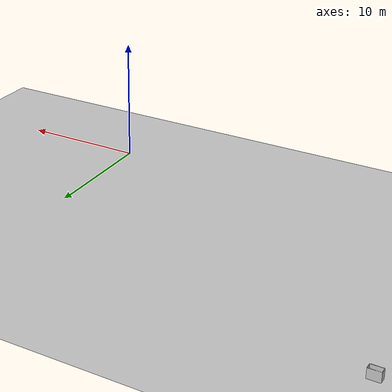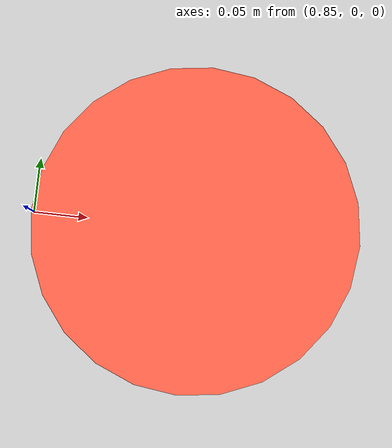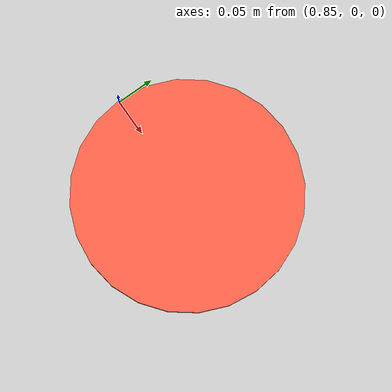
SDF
<?xml version="1.0" ?>
<sdf version='1.4'>
  <world name='default'>

    <physics type='ode'>
      <max_step_size>0.001</max_step_size>
      <real_time_factor>1</real_time_factor>
      <real_time_update_rate>1000</real_time_update_rate>
      <gravity>0 0 -9.8</gravity>
    </physics>

    <spherical_coordinates>
      <surface_model>EARTH_WGS84</surface_model>
      <latitude_deg>0</latitude_deg>
      <longitude_deg>0</longitude_deg>
      <elevation>0</elevation>
      <heading_deg>0</heading_deg>
    </spherical_coordinates>

    <!-- A global light source -->
   <scene>
      <sky>
        <clouds>
          <speed>12</speed>
        </clouds>
      </sky>
   </scene>

   <include>
     <uri>model://ground_plane</uri>
   </include>

   <include>
     <uri>model://sun</uri>
   </include>

   <model name="disk_1" >
     <pose>1 0 0.005 0 0 0</pose>
     <include>
       <uri>model://disk_object</uri>
     </include>
     <plugin name="gazebo_treasure_plugin_disk_1" filename="libgazebo_treasure_plugin.so">
       <staticObject>true</staticObject>
     </plugin>
   </model>

   <model name="disk_2" >
     <pose>1 0 0.005 0 0 0</pose>
     <include>
       <uri>model://disk_object</uri>
     </include>
     <plugin name="gazebo_treasure_plugin_disk_2" filename="libgazebo_treasure_plugin.so">
       <staticObject>true</staticObject>
     </plugin>
   </model>

   <model name="disk_3" >
     <pose>1 0 0.005 0 0 0</pose>
     <include>
       <uri>model://disk_object</uri>
     </include>
     <plugin name="gazebo_treasure_plugin_disk_3" filename="libgazebo_treasure_plugin.so">
       <staticObject>true</staticObject>
     </plugin>
   </model>

   <model name="disk_4" >
     <pose>1 0 0.005 0 0 0</pose>
     <include>
       <uri>model://disk_object</uri>
     </include>
     <plugin name="gazebo_treasure_plugin_disk_4" filename="libgazebo_treasure_plugin.so">
       <staticObject>true</staticObject>
     </plugin>
   </model>

   <model name="disk_5" >
     <pose>1 0 0.005 0 0 0</pose>
     <include>
       <uri>model://disk_object</uri>
     </include>
     <plugin name="gazebo_treasure_plugin_disk_5" filename="libgazebo_treasure_plugin.so">
       <staticObject>true</staticObject>
     </plugin>
   </model>

   <model name="disk_6" >
     <pose>1 0 0.005 0 0 0</pose>
     <include>
       <uri>model://disk_object</uri>
     </include>
     <plugin name="gazebo_treasure_plugin_disk_6" filename="libgazebo_treasure_plugin.so">
       <staticObject>true</staticObject>
     </plugin>
   </model>

   <model name="dropping_zone_box" >
     <pose>-30 20 0 0 0 0</pose>
     <include>
       <uri>model://dropping_zone_box</uri>
     </include>
   </model>

  </world>
</sdf>

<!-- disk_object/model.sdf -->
<sdf version='1.4'>
  <model name="disk_object">
    <link name="link" >
      <pose>0 0 0.005 0 0 0</pose>
      <inertial>
        <mass>0.5</mass>
        <inertia>
          <!-- http://answers.gazebosim.org/question/4372/the-inertia-matrix-explained/ -->
          <ixx>0.002805</ixx>    <!-- for a box: ixx = 0.083 * mass * (3*r*r + h*h) -->
          <ixy>0.0</ixy>         <!-- for a box: ixy = 0 -->
          <ixz>0.0</ixz>         <!-- for a box: ixz = 0 -->
          <iyy>0.002805</iyy>    <!-- for a box: iyy = 0.083 * mass * (3*r*r + h*h) -->
          <iyz>0.0</iyz>         <!-- for a box: iyz = 0 -->
          <izz>0.010000</izz>    <!-- for a box: izz = 0.5 * mass * (r*r) -->
        </inertia>
      </inertial>
      <collision name="collision">
        <geometry>
          <cylinder>
            <length>0.01</length>
            <radius>0.15</radius>
          </cylinder>
        </geometry>
      </collision>
      <visual name="visual">
        <geometry>
          <cylinder>
            <length>0.01</length>
            <radius>0.15</radius>
          </cylinder>
        </geometry>
        <material>
          <ambient>1.00 0.39 0.28 1</ambient> <!-- tomato -->
          <diffuse>1.00 0.38 0.28 1</diffuse>
          <specular>0.1 0.1 0.1 1</specular>
          <emissive>0 0 0 0</emissive>
        </material>
      </visual>
    </link>
  </model>
</sdf>

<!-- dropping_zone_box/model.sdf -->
<sdf version='1.5'>
  <model name='dropping_zone_box'>
    <link name='box_link'>
      <pose frame=''>0 0 0 0 -0 0</pose>
      <inertial>
        <pose frame=''>0 0 0 0 -0 0</pose>
        <mass>20</mass>
        <inertia>
          <ixx>1</ixx>
          <ixy>0</ixy>
          <ixz>0</ixz>
          <iyy>1</iyy>
          <iyz>0</iyz>
          <izz>1</izz>
        </inertia>
      </inertial>
      <collision name='box_link_collision'>
        <pose frame=''>0 0 0 0 -0 0</pose>
        <geometry>
          <mesh>
            <scale>1 1 1</scale>
            <uri>model://dropping_zone_box/meshes/box_link_mesh.dae</uri>
          </mesh>
        </geometry>
        <surface>
          <contact>
            <ode/>
          </contact>
          <friction>
            <ode>
              <mu>0.9</mu>
              <mu2>0.9</mu2>
            </ode>
          </friction>
        </surface>
      </collision>
      <visual name='box_link_visual'>
        <pose frame=''>0 0 0 0 -0 0</pose>
        <geometry>
          <mesh>
            <scale>1 1 1</scale>
            <uri>model://dropping_zone_box/meshes/box_link_mesh.dae</uri>
          </mesh>
        </geometry>
      </visual>
      <gravity>1</gravity>
      <velocity_decay/>
      <self_collide>0</self_collide>
    </link>
  </model>
</sdf>
